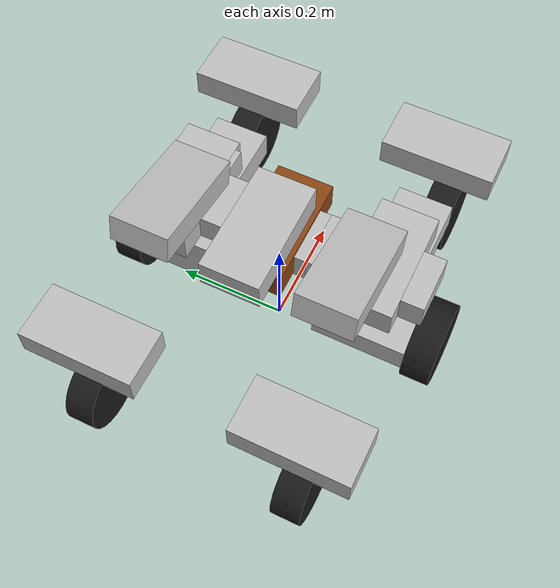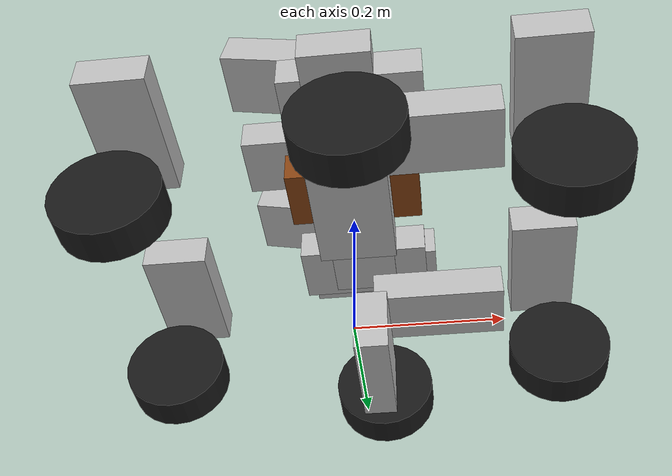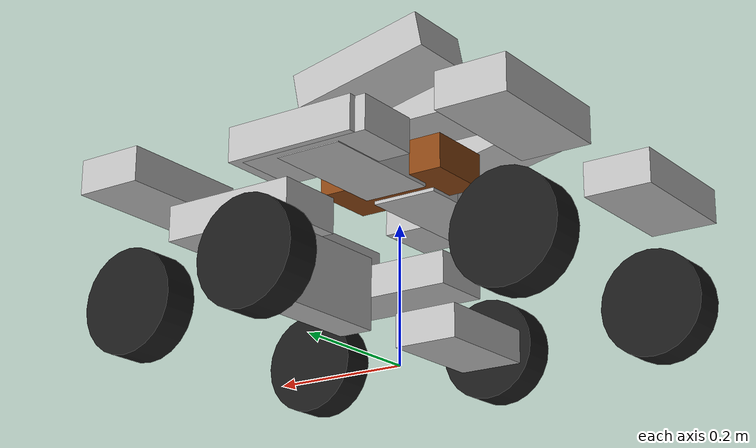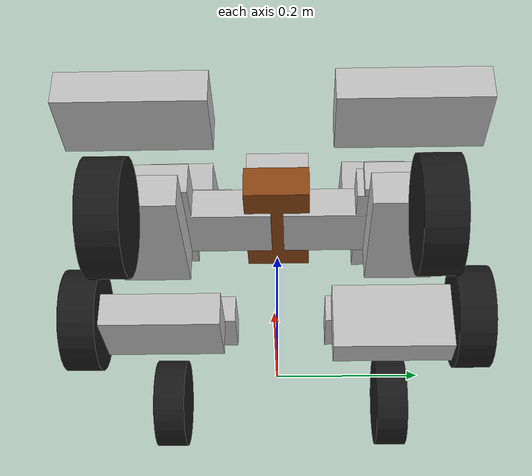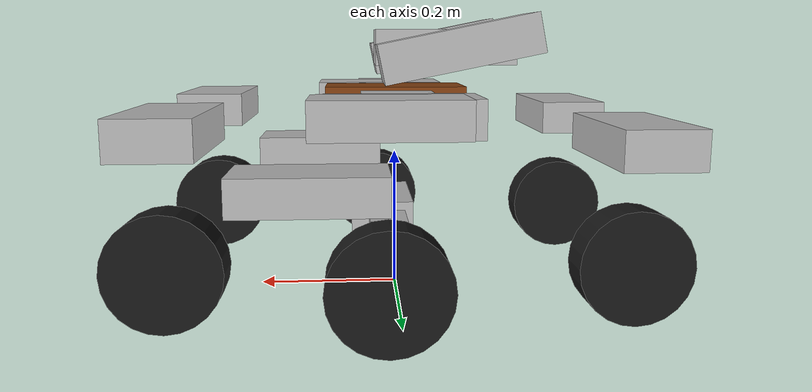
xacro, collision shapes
<?xml version="1.0" ?>
<robot xmlns:xacro="http://www.ros.org/wiki/xacro" name="rover">
    <material name="black">
        <color rgba="0.1 0.1 0.1 1.0"/>
    </material>

    <material name="blue">
        <color rgba="0 0 1 0.5"/>
    </material>

    <material name="sky_blue">
        <color rgba="0.5294 0.8078 0.9804 1"/>
    </material>

    <material name="silver">
        <color rgba="0.75 0.75 0.75 1"/>
    </material>

    <material name="brown">
      <color rgba="0.5451 0.2706 0.0745 1"/>
    </material>

    <xacro:include filename="$(find custom_slam)/urdf/gazebo.urdf.xacro"/>
    <xacro:include filename="$(find custom_slam)/urdf/insert_transmission.urdf.xacro"/>

    <link name="base_footprint"/>
    <link name="base_link">
        <collision>
            <origin rpy="0 0 0" xyz="0 0 0.0"/>
            <geometry>
                    <box size="0.2 0.1 0.05"/>
            </geometry>
        </collision>

        <visual>
            <origin rpy="0 0 0" xyz="0 0 0.0"/>
            <geometry>
                <mesh filename="file://$(find custom_slam)/meshes/body.stl"/>
            </geometry>
            <material name="brown"/>
        </visual>

	    <inertial>
            <origin rpy="0 0 0" xyz="0 0 0"/>
            <mass value="10"/>
            <inertia  ixx="0.28541666666666665" ixy="0" ixz="0" iyy="0.8666666666666666" 	iyz="0" izz="1.0854166666666665" />
        </inertial>

    </link>

    <joint name="base_joint" type="fixed">
        <parent link="base_footprint"/>
        <origin rpy="0 0 0" xyz="0 0 0.273745"/>
        <child link="base_link"/>
        <axis xyz="0 0 1"/>
    </joint>

    <link name="box_rotate">
        <collision>
            <origin rpy="0 0 -3.14" xyz="0 0 0.0"/>
            <geometry>
                <box size="0.2 0.1 0.05"/>
            </geometry>
        </collision>

        <visual>
            <origin rpy="0 0 -3.14" xyz="0 0 0"/>
            <geometry>
                <mesh filename="file://$(find custom_slam)/meshes/box_link.stl"/>
            </geometry>
            <material name="silver"/>
        </visual>

        <inertial>
            <origin rpy="0 0 -3.14" xyz="0 0 0"/>
            <mass value="0.2"/>
            <inertia  ixx="0.0017960061392112761" ixy="0" ixz="0" iyy="5.164887871181532e-06" iyz="0" izz="0.001795990912371075" />
        </inertial>
    </link>

    <joint name="body_joint" type="fixed">
        <parent link="base_link"/>
        <origin rpy="0 0 0" xyz="-0.071275 0 0.080475"/>
        <child link="box_rotate"/>
        <axis xyz="0 0 1"/>
    </joint>

    <xacro:macro name="arm_rotate" params="prefix dir">
        <link name="arm_rotate_${prefix}">
            <collision>
                <origin rpy="0 0.2 0" xyz="0 0 0"/>
                <geometry>
                    <box size="0.2 0.1 0.05"/>
                </geometry>
            </collision>

            <visual>
                <origin rpy="0 0.2 0" xyz="0 0 0"/>
                <geometry>
                    <mesh filename="file://$(find custom_slam)/meshes/arm.stl"/>
                </geometry>
                <material name="silver"/>
            </visual>

            <inertial>
                <origin rpy="0 0.2 0" xyz="0 0 0"/>
                <mass value="0.1"/>
                <inertia  ixx="3.1492026961385533e-06" ixy="0" ixz="0" iyy="6.396050780815705e-05" iyz="0" izz="6.393627133943758e-05" />

            </inertial>
        </link>

        <joint name="arm_rotate_join_${prefix}" type="revolute">
            <parent link="box_rotate"/>
            <origin rpy="0 0.0 0" xyz="0 ${dir*0.153} 0"/>
            <child link="arm_rotate_${prefix}"/>
            <axis xyz="0 1 0"/>
            <limit effort="0" velocity="1.0" lower="-0.3" upper="0.3"/>
            <dynamics damping="0.5" friction="0.1"/>
        </joint>
    </xacro:macro>
    <xacro:arm_rotate prefix="L" dir="1"/>
    <xacro:arm_rotate prefix="R" dir="-1"/>

    <xacro:macro name="turn_bukles" params="prefix dir origin">
        <link name="turn_bukles_link_${prefix}">
            <collision>
                <origin rpy="0 0 ${origin}" xyz="0 0 0.0"/>
                <geometry>
                    <box size="0.2 0.1 0.05"/>
                </geometry>
            </collision>

            <visual>
                <origin rpy="0 0 ${origin}" xyz="0 0 0.0"/>
                <geometry>
                    <mesh filename="file://$(find custom_slam)/meshes/turn_${prefix}.stl"/>
                </geometry>
                <material name="silver"/>
            </visual>
            <inertial>
                <origin rpy="0 0 0" xyz="0 0 0.0"/>
                <mass value="1"/>
                <inertia  ixx="0.0016688655832571472" ixy="0" ixz="0" iyy="0.0020448255700570341" iyz="0" izz="0.00116395044451649" />
            </inertial>

        </link>

        <joint name="turn_bukles_joint_${prefix}" type="fixed">
            <parent link="arm_rotate_${prefix}"/>
            <origin rpy="0 0 0" xyz="0.071558 ${dir*0.017545} -0.084292"/>
            <child link="turn_bukles_link_${prefix}"/>
        </joint>

    </xacro:macro>
    <xacro:turn_bukles prefix="L" dir="1" origin="0"/>
    <xacro:turn_bukles prefix="R" dir="-1" origin ="-1.57"/>

    <xacro:macro name="body_axis_link" params="prefix dir">
        <link name="body_axis_link_${prefix}">
            <collision>
                <origin rpy="0 0 1.57" xyz="0 0 0.0"/>
                <geometry>
                    <box size="0.2 0.1 0.05"/>
                </geometry>
            </collision>
            <visual>
                <origin rpy="0 0 1.57" xyz="0 0 0.0"/>
                <geometry>
                    <mesh filename="file://$(find custom_slam)/meshes/body_axis.stl"/>
                </geometry>
                <material name="silver"/>
            </visual>
            <inertial>
                <origin rpy="0 0 1.57" xyz="0 0 0.0"/>
                <mass value="0.5"/>
                <inertia  ixx="0.0002647325735077617" ixy="0" ixz="0" iyy="0.0006894427883912008" iyz="0" izz="0.0007752858571736844" />
            </inertial>
        </link>

        <joint name="body_axis_joint_${prefix}" type="revolute">
            <parent link="turn_bukles_link_${prefix}"/>
            <origin rpy="0 0 0" xyz="0 ${dir*-0.060920} -0.001245"/>
            <child link="body_axis_link_${prefix}"/>
            <axis xyz="0 1 0"/>
            <limit effort="0" velocity="1.0" lower="-0.3" upper="0.3"/>
            <dynamics damping="0.5" friction="0.1"/>
        </joint>

    </xacro:macro>
    <xacro:body_axis_link prefix="L" dir="1"/>
    <xacro:body_axis_link prefix="R" dir="-1"/>

    <xacro:macro name="rocker_bogie_link" params="prefix dir">
        <link name="rocker_bogie_link_${prefix}_1">
            <collision>
                <origin rpy="0 0 0" xyz="0 0 0.0"/>
                <geometry>
                    <box size="0.2 0.1 0.05"/>
                </geometry>
            </collision>

            <visual>
                <origin rpy="0 0 0" xyz="0 0 0.0"/>
                <geometry>
                    <mesh filename="file://$(find custom_slam)/meshes/rockerbogie_middle_1.stl"/>
                </geometry>
                <material name="silver"/>
            </visual>

            <inertial>
                <origin rpy="0 0 0" xyz="0 0 0.0"/>
                <mass value="7"/>
                <inertia  ixx="0.24701126860819052" ixy="0" ixz="0" iyy="3.544526366681435" iyz="0" izz="3.335915098740816" />
            </inertial>

        </link>

        <joint name="rocker_bogie_joint_${prefix}_1" type="fixed">
            <parent link="body_axis_link_${prefix}"/>
            <origin rpy="0 0 0" xyz="0.016004 ${dir*0.071485} 0.001353"/>
            <child link="rocker_bogie_link_${prefix}_1"/>
        </joint>

        <link name="rocker_bogie_link_${prefix}_2">
            <collision>
                <origin rpy="0 0 0" xyz="0 0 0.0"/>
                <geometry>
                    <box size="0.2 0.1 0.05"/>
                </geometry>
            </collision>

            <visual>
                <origin rpy="0 0 0" xyz="0 0 0.0"/>
                <geometry>
                    <mesh filename="file://$(find custom_slam)/meshes/rockerbogie_front_1.stl"/>
                </geometry>
                <material name="silver"/>
            </visual>

            <inertial>
                <origin rpy="0 0 0" xyz="0 0 0.0"/>
                <mass value="3"/>
                <inertia  ixx="0.51733003028693055" ixy="0" ixz="0" iyy="1.1690895987181758" iyz="0" izz="0.6934262363396754" />
            </inertial>

        </link>

        <joint name="rocker_bogie_joint_${prefix}_2" type="revolute">
            <parent link="rocker_bogie_link_${prefix}_1"/>
            <origin rpy="0 0 0" xyz="0.099618 0 -0.091275"/>
            <child link="rocker_bogie_link_${prefix}_2"/>
            <limit effort="10000.0" velocity="1.0" lower="-0.5" upper="0.5"/>
            <axis xyz="0 1 0"/>
        </joint>

    </xacro:macro>

    <xacro:rocker_bogie_link prefix="L" dir="1"/>
    <xacro:rocker_bogie_link prefix="R" dir="-1"/>

    <xacro:macro name="wheel_link" params="prefix dir origin">
        <link name="front_wheel_link_${prefix}">
            <collision>
                <origin rpy="0 0 ${dir*-1.57}" xyz="0 0 0.0"/>
                <geometry>
                    <box size="0.2 0.1 0.05"/>
                </geometry>
                <surface>
                    <friction>
                    <ode>
                        <mu>0.4</mu>
                        <mu2>0.2</mu2>
                        <slip1>0.05</slip1>
                        <slip2>0.05</slip2>
                    </ode>
                    </friction>
                </surface>
            </collision>

            <visual>
                <origin rpy="0 0 ${dir*-1.57}" xyz="0 0 0.0"/>
                <geometry>
                    <mesh filename="file://$(find custom_slam)/meshes/wheel_link_left_2.stl"/>
                </geometry>
                <material name="silver"/>
            </visual>

            <inertial>
                <origin rpy="0 0 ${dir*-1.57}" xyz="0 0 0.0"/>
                <mass value="0.8"/>
                <inertia  ixx="0.002865290876023045" ixy="0" ixz="0" iyy="0.004329299643338258" iyz="0" izz="0.0018192303726865125" />
            </inertial>
        </link>

        <joint name="front_wheel_joint_${prefix}" type="revolute">
        <!-- revolute continuous -->
            <parent link="rocker_bogie_link_${prefix}_2"/>
            <origin rpy="0 0 0" xyz="0.170113 -0.000335 0.076721"/>
            <child link="front_wheel_link_${prefix}"/>
            <limit effort="100000.0" velocity="10" lower="-0.523599" upper="0.523599"/>
            <axis xyz="0 0 1"/>
        </joint>

        <link name="middle_wheel_link_${prefix}">
            <collision>
                <origin rpy="${origin} 0 ${-dir*1.57}" xyz="0 0 0.0"/>
                <geometry>
                    <box size="0.2 0.1 0.05"/>
                </geometry>
                <surface>
                    <friction>
                    <ode>
                        <mu>0.4</mu>
                        <mu2>0.2</mu2>
                        <slip1>0.05</slip1>
                        <slip2>0.05</slip2>
                    </ode>
                    </friction>
                </surface>
            </collision>

            <visual>
                <origin rpy="${origin} 0 ${-dir*1.57}" xyz="0 0 0.0"/>
                <geometry>
                    <mesh filename="file://$(find custom_slam)/meshes/wheel_middle_left.stl"/>
                </geometry>
                <material name="silver"/>
            </visual>

            <inertial>
                <origin rpy="${origin} 0 ${-dir*1.57}" xyz="0 0 0.0"/>
                <mass value="0.3"/>
                <inertia  ixx="0.00023039825512741194" ixy="0" ixz="0" iyy="0.0004706118439697759" iyz="0" izz="0.0004706117933937492" />
            </inertial>

        </link>

        <joint name="middle_wheel_joint_${prefix}" type="fixed">
            <parent link="rocker_bogie_link_${prefix}_2"/>
            <origin rpy="0 0 0" xyz="-0.101456 ${dir*0.000053} -0.100276"/>
            <child link="middle_wheel_link_${prefix}"/>

            <axis xyz="0 1 0"/>
        </joint>

        <link name="rear_wheel_link_${prefix}">
            <collision>
                <origin rpy="0 0 ${-dir*1.57}" xyz="0 0 0.0"/>
                <geometry>
                    <box size="0.2 0.1 0.05"/>
                </geometry>
                <surface>
                    <friction>
                    <ode>
                        <mu>0.4</mu>
                        <mu2>0.2</mu2>
                        <slip1>0.05</slip1>
                        <slip2>0.05</slip2>
                    </ode>
                    </friction>
                </surface>
            </collision>

            <visual>
                <origin rpy="0 0 ${-dir*1.57}" xyz="0 0 0.0"/>
                <geometry>
                    <mesh filename="file://$(find custom_slam)/meshes/wheel_link_left_2.stl"/>
                </geometry>
                <material name="silver"/>
            </visual>

            <inertial>
                <origin rpy="0 0 ${-dir*1.57}" xyz="0 0 0.0"/>
                <mass value="0.8"/>
                <inertia  ixx="0.002865290876023045" ixy="0" ixz="0" iyy="0.004329299643338258" iyz="0" izz="0.0018192303726865125" />

            </inertial>

        </link>

        <joint name="rear_wheel_joint_${prefix}" type="revolute">
        <!-- revolute continuous -->
            <parent link="rocker_bogie_link_${prefix}_1"/>
            <origin rpy="0 0 0" xyz="-0.311763 0 -0.030379"/>
            <child link="rear_wheel_link_${prefix}"/>
            <limit effort="100000.0" velocity="3" lower="-0.523599" upper="0.523599"/>
            <axis xyz="0 0 1"/>
        </joint>

    </xacro:macro>

    <xacro:wheel_link prefix="L" dir="1" origin="1.57"/>
    <xacro:wheel_link prefix="R" dir="-1" origin="-3.14"/>

    <xacro:macro name="wheel" params="prefix dir origin prefix_1">
        <link name="front_wheel_link_${prefix}">
            <collision>
                <origin rpy="-1.57 0 ${origin}" xyz="0 0 0.0"/>
                <geometry>
                    <cylinder radius="0.075" length="0.052"/>
                </geometry>
                <surface>
                    <friction>
                        <ode>
                            <mu>3.7</mu>
                            <mu2>3.3</mu2>
                        </ode>
                    </friction>
                </surface>
            </collision>

            <visual>
                <origin rpy="-1.57 0 ${origin}" xyz="0 0 0.0"/>
                <geometry>
                    <mesh filename="file://$(find custom_slam)/meshes/wheel.stl"/>
                </geometry>
                <material name="black"/>
            </visual>

            <inertial>
                <origin rpy="-1.57 0 ${origin}" xyz="0 0 0.0"/>
                <mass value="0.8"/>
                <inertia  ixx="0.0024621497157168697" ixy="0" ixz="0" iyy="0.002462972407314915" iyz="0" izz="0.0035658885464652456" />
            </inertial>

        </link>

        <joint name="front_wheel_joint_${prefix}" type="continuous">
            <parent link="front_wheel_link_${prefix_1}"/>
            <origin rpy="0 0 0" xyz="0.006231 ${dir*0.019544} -0.169991"/>
            <child link="front_wheel_link_${prefix}"/>
            <axis xyz="0 1 0"/>
            <velocity>5.0</velocity>
        </joint>

        <link name="middle_wheel_link_${prefix}">
            <collision>
                <origin rpy="-1.57 0 ${origin}" xyz="0 0 0.0"/>
                <geometry>
                    <cylinder radius="0.075" length="0.052"/>
                </geometry>
                <surface>
                    <friction>
                        <ode>
                            <mu>3.7</mu>
                            <mu2>3.3</mu2>
                        </ode>
                    </friction>
                </surface>
            </collision>

            <visual>
                <origin rpy="-1.57 0 ${origin}" xyz="0 0 0.0"/>
                <geometry>
                    <mesh filename="file://$(find custom_slam)/meshes/wheel.stl"/>
                </geometry>
                <material name="black"/>
            </visual>

            <inertial>
                <origin rpy="-1.57 0 ${origin}" xyz="0 0 0.0"/>
                <mass value="0.8"/>
                <inertia  ixx="0.0024621497157168697" ixy="0" ixz="0" iyy="0.002462972407314915" iyz="0" izz="0.0035658885464652456" />
            </inertial>
        </link>

        <joint name="middle_wheel_joint_${prefix}" type="continuous">
            <parent link="middle_wheel_link_${prefix_1}"/>
            <origin rpy="0 0 0" xyz="0.006691 ${dir*0.100382} 0.005425"/>
            <child link="middle_wheel_link_${prefix}"/>
            <axis xyz="0 1 0"/>
            <velocity>5.0</velocity>
        </joint>

        <link name="rear_wheel_link_${prefix}">
            <collision>
                <origin rpy="-1.57 0 ${origin}" xyz="0 0 0.0"/>
                <geometry>
                    <cylinder radius="0.075" length="0.052"/>
                </geometry>
                <surface>
                    <friction>
                        <ode>
                            <mu>3.7</mu>
                            <mu2>3.3</mu2>
                        </ode>
                    </friction>
                </surface>
            </collision>

            <visual>
                <origin rpy="-1.57 0 ${origin}" xyz="0 0 0.0"/>
                <geometry>
                    <mesh filename="file://$(find custom_slam)/meshes/wheel.stl"/>
                </geometry>
                <material name="black"/>
            </visual>

            <inertial>
                <origin rpy="-1.57 0 ${origin}" xyz="0 0 0.0"/>
                <mass value="0.8"/>
                <inertia  ixx="0.0024621497157168697" ixy="0" ixz="0" iyy="0.002462972407314915" iyz="0" izz="0.0035658885464652456" />
            </inertial>
        </link>

        <joint name="rear_wheel_joint_${prefix}" type="continuous">
            <parent link="rear_wheel_link_${prefix_1}"/>
            <origin rpy="0 0 0" xyz="-0.000203 ${dir*0.008131} -0.160678"/>
            <child link="rear_wheel_link_${prefix}"/>
            <axis xyz="0 1 0"/>
            <velocity>5.0</velocity>
        </joint>

    </xacro:macro>
    <xacro:wheel prefix="left" dir="1" origin="0" prefix_1="L"/>
    <xacro:wheel prefix="right" dir="-1" origin="3.14" prefix_1="R"/>

    <joint name="imu_joint" type="fixed">
            <parent link="base_link"/>
            <child link="imu_link"/>
            <origin xyz="0 0 0" rpy="0 0 0"/>
        </joint>

    <link name="imu_link"></link>

    <joint name="lidar_joint" type="fixed">
        <parent link="base_link"/>
        <child link="base_scan"/>
        <origin xyz="0 0 0" rpy="0 0 0"/>
    </joint>

    <link name="base_scan"></link>

    <joint name="camera_joint" type="fixed">
        <parent link="base_link"/>
        <child link="camera_link"/>
        <origin xyz="0 0 0.5" rpy="0 0 0"/>
    </joint>
    <link name="camera_link"/>

    <!-- LEFT CAMERA -->
    <joint name="left_camera_joint" type="fixed">
        <parent link="camera_link"/>
        <child link="left_camera_frame"/>
        <origin xyz="0 0.05 0" rpy="0 0.261799 0"/>
    </joint>
    <link name="left_camera_frame"/>

    <joint name="left_camera_optical_joint" type="fixed">
        <parent link="left_camera_frame"/>
        <child link="left_camera_optical_frame"/>
        <origin xyz="0 0 0" rpy="-1.570796 0 -1.570796"/>
    </joint>
    <link name="left_camera_optical_frame"/>

    <!-- RIGHT CAMERA -->
    <joint name="right_camera_joint" type="fixed">
        <parent link="camera_link"/>
        <child link="right_camera_frame"/>
        <origin xyz="0 -0.05 0" rpy="0 0.261799 0"/>
    </joint>
    <link name="right_camera_frame"/>

    <joint name="right_camera_optical_joint" type="fixed">
        <parent link="right_camera_frame"/>
        <child link="right_camera_optical_frame"/>
        <origin xyz="0 0 0" rpy="-1.570796 0 -1.570796"/>
    </joint>
    <link name="right_camera_optical_frame"/>

</robot>
